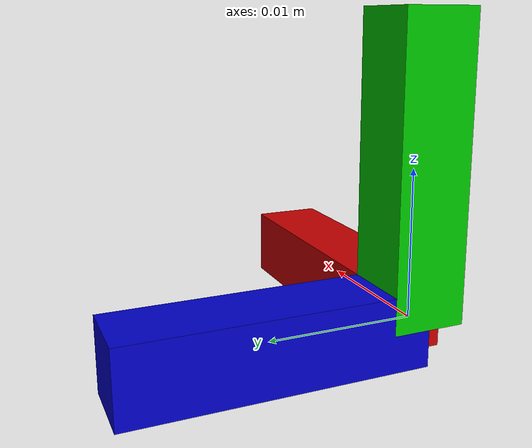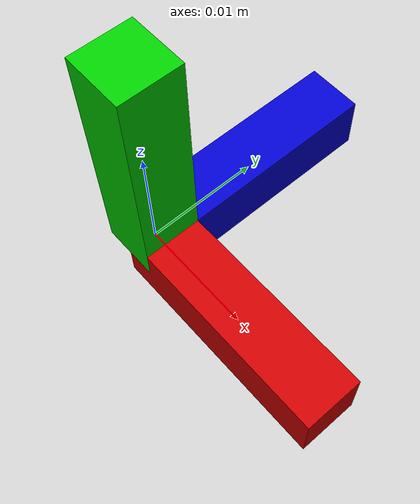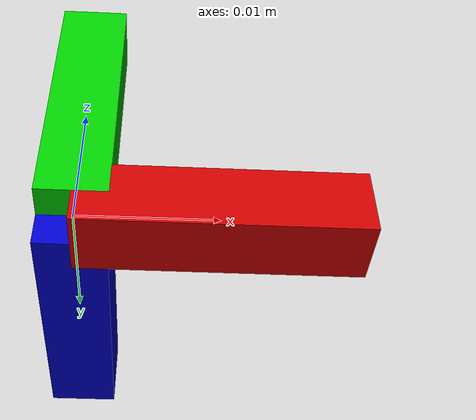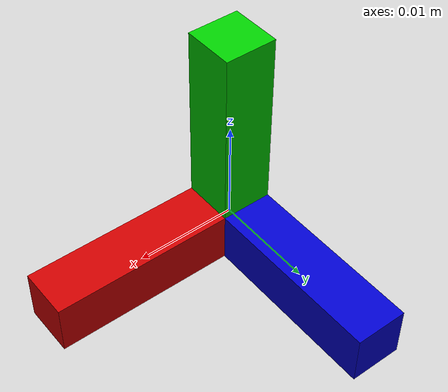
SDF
<?xml version='1.0'?>
<sdf version='1.6'>

    <model name='frame'>
        <link name='z'>
            <pose>0 0 0.01 0 0 0</pose>
            <visual name='vis_z'>
                <geometry>
                    <box>
                        <size>0.005 0.005 0.02</size>
                    </box>
                </geometry>
                <material>
                    <ambient>0 0.8 0 1</ambient>
                </material>
            </visual>
            <gravity>0</gravity>
        </link>

        <link name='x'>
            <pose>0.01 0 0 0 0 0</pose>
            <visual name='vis_x'>
                <geometry>
                    <box>
                        <size>0.02 0.005 0.005</size>
                    </box>
                </geometry>
                <material>
                    <ambient>0.8 0 0 1</ambient>
                </material>
            </visual>
            <gravity>0</gravity>
        </link>

        <link name='y'>
            <pose>0 0.01 0 0 0 0</pose>
            <visual name='vis_y'>
                <geometry>
                    <box>
                        <size>0.005 0.02 0.005</size>
                    </box>
                </geometry>
                <material>
                    <ambient>0 0 0.8 1</ambient>
                </material>
            </visual>
            <gravity>0</gravity>
        </link>

        <joint name='x_to_z' type="fixed">
            <parent>z</parent>
            <child>x</child>
            <pose>0 0 0 0 0 0</pose>
        </joint>

        <joint name='y_to_z' type="fixed">
            <parent>z</parent>
            <child>y</child>
            <pose>0 0 0 0 0 0</pose>
        </joint>
    </model>
</sdf>
